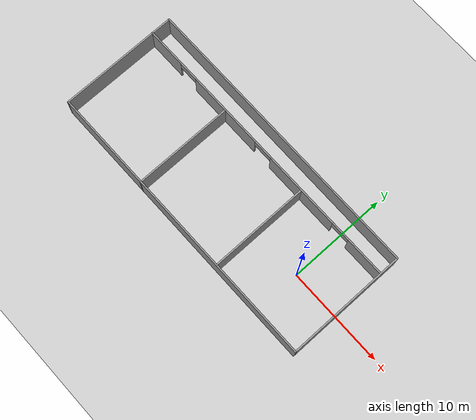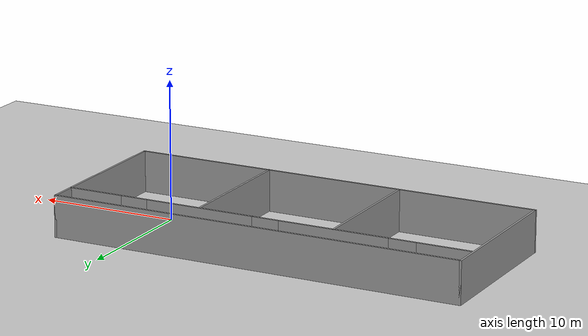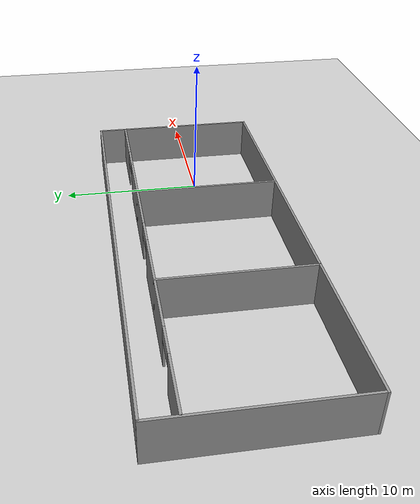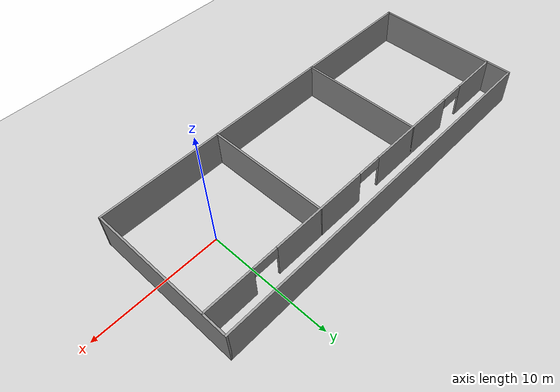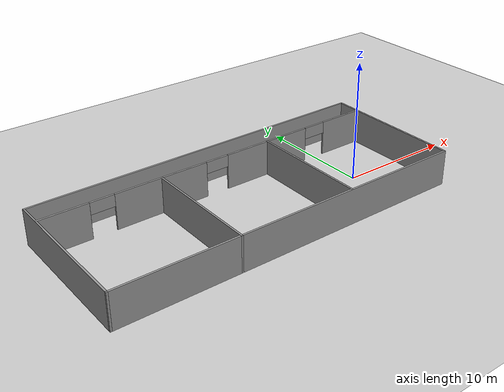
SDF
<sdf version="1.6">
 <world name="default">
  <light name="sun" type="directional">
   <pose>0 0 10 0 -0 0</pose>
   <diffuse>0.8 0.8 0.8 1</diffuse>
   <specular>0.2 0.2 0.2 1</specular>
   <attenuation>
    <range>1000</range>
    <constant>0.9</constant>
    <linear>0.01</linear>
    <quadratic>0.001</quadratic>
   </attenuation>
   <direction>-0.5 0.1 -0.9</direction>
  </light>
  <model name="ground_plane">
   <static>1</static>
   <link name="link">
    <collision name="collision">
     <geometry><plane><normal>0 0 1</normal><size>100 100</size></plane></geometry>
     <surface><friction><ode><mu>100</mu><mu2>50</mu2></ode></friction></surface>
    </collision>
    <visual name="visual">
     <cast_shadows>0</cast_shadows>
     <geometry><plane><normal>0 0 1</normal><size>100 100</size></plane></geometry>
     <material>
      <script><uri>file://media/materials/scripts/gazebo.material</uri><name>Gazebo/Grey</name></script>
     </material>
    </visual>
   </link>
  </model>
  <gravity>0 0 -9.8</gravity>
  <magnetic_field>6e-06 2.3e-05 -4.2e-05</magnetic_field>
  <atmosphere type="adiabatic"/>
  <physics name="default_physics" default="0" type="ode">
   <max_step_size>0.001</max_step_size>
   <real_time_factor>1</real_time_factor>
   <real_time_update_rate>1000</real_time_update_rate>
  </physics>
  <scene><ambient>0.4 0.4 0.4 1</ambient><background>0.7 0.7 0.7 1</background><shadows>1</shadows></scene>
  <spherical_coordinates>
   <surface_model>EARTH_WGS84</surface_model>
   <latitude_deg>0</latitude_deg>
   <longitude_deg>0</longitude_deg>
   <elevation>0</elevation>
   <heading_deg>0</heading_deg>
  </spherical_coordinates>
  <model name="SimilarRooms">
   <pose>-10 1 0 0 -0 0</pose>
   <link name="Wall_1">
    <collision name="Wall_1_Collision">
     <geometry><box><size>30.15 0.15 3</size></box></geometry>
     <pose>0 0 1.5 0 -0 0</pose>
    </collision>
    <visual name="Wall_1_Visual">
     <pose>0 0 1.5 0 -0 0</pose>
     <geometry><box><size>30.15 0.15 3</size></box></geometry>
     <material>
      <script><uri>file://media/materials/scripts/gazebo.material</uri><name>Gazebo/Grey</name></script>
      <ambient>1 1 1 1</ambient>
     </material>
     <meta><layer>0</layer></meta>
    </visual>
    <pose>0 -6 0 0 -0 3.14159</pose>
   </link>
   <link name="Wall_10">
    <collision name="Wall_10_Collision">
     <geometry><box><size>10.15 0.15 3</size></box></geometry>
     <pose>0 0 1.5 0 -0 0</pose>
    </collision>
    <visual name="Wall_10_Visual">
     <pose>0 0 1.5 0 -0 0</pose>
     <geometry><box><size>10.15 0.15 3</size></box></geometry>
     <material>
      <script><uri>file://media/materials/scripts/gazebo.material</uri><name>Gazebo/Grey</name></script>
      <ambient>1 1 1 1</ambient>
     </material>
     <meta><layer>0</layer></meta>
    </visual>
    <pose>5 -1 0 0 0 -1.5708</pose>
   </link>
   <link name="Wall_2">
    <collision name="Wall_2_Collision">
     <geometry><box><size>12.15 0.15 3</size></box></geometry>
     <pose>0 0 1.5 0 -0 0</pose>
    </collision>
    <visual name="Wall_2_Visual">
     <pose>0 0 1.5 0 -0 0</pose>
     <geometry><box><size>12.15 0.15 3</size></box></geometry>
     <material>
      <script><uri>file://media/materials/scripts/gazebo.material</uri><name>Gazebo/Grey</name></script>
      <ambient>1 1 1 1</ambient>
     </material>
     <meta><layer>0</layer></meta>
    </visual>
    <pose>-15 0 0 0 -0 1.5708</pose>
   </link>
   <link name="Wall_3">
    <collision name="Wall_3_Collision">
     <geometry><box><size>30.15 0.15 3</size></box></geometry>
     <pose>0 0 1.5 0 -0 0</pose>
    </collision>
    <visual name="Wall_3_Visual">
     <pose>0 0 1.5 0 -0 0</pose>
     <geometry><box><size>30.15 0.15 3</size></box></geometry>
     <material>
      <script><uri>file://media/materials/scripts/gazebo.material</uri><name>Gazebo/Grey</name></script>
      <ambient>1 1 1 1</ambient>
     </material>
     <meta><layer>0</layer></meta>
    </visual>
    <pose>0 6 0 0 -0 0</pose>
   </link>
   <link name="Wall_4">
    <collision name="Wall_4_Collision">
     <geometry><box><size>12.15 0.15 3</size></box></geometry>
     <pose>0 0 1.5 0 -0 0</pose>
    </collision>
    <visual name="Wall_4_Visual">
     <pose>0 0 1.5 0 -0 0</pose>
     <geometry><box><size>12.15 0.15 3</size></box></geometry>
     <material>
      <script><uri>file://media/materials/scripts/gazebo.material</uri><name>Gazebo/Grey</name></script>
      <ambient>1 1 1 1</ambient>
     </material>
     <meta><layer>0</layer></meta>
    </visual>
    <pose>15 0 0 0 0 -1.5708</pose>
   </link>
   <link name="Wall_6">
    <pose>0 4 0 0 -0 0</pose>
    <visual name="Wall_6_Visual_0">
     <pose>-13.0375 0 1.5 0 -0 0</pose>
     <geometry><box><size>4.075 0.15 3</size></box></geometry>
     <material>
      <script><uri>file://media/materials/scripts/gazebo.material</uri><name>Gazebo/Grey</name></script>
      <ambient>1 1 1 1</ambient>
     </material>
     <meta><layer>0</layer></meta>
    </visual>
    <collision name="Wall_6_Collision_0">
     <geometry><box><size>4.075 0.15 3</size></box></geometry>
     <pose>-13.0375 0 1.5 0 -0 0</pose>
    </collision>
    <visual name="Wall_6_Visual_1">
     <pose>-5 0 1.5 0 -0 0</pose>
     <geometry><box><size>8 0.15 3</size></box></geometry>
     <material>
      <script><uri>file://media/materials/scripts/gazebo.material</uri><name>Gazebo/Grey</name></script>
      <ambient>1 1 1 1</ambient>
     </material>
     <meta><layer>0</layer></meta>
    </visual>
    <collision name="Wall_6_Collision_1">
     <geometry><box><size>8 0.15 3</size></box></geometry>
     <pose>-5 0 1.5 0 -0 0</pose>
    </collision>
    <visual name="Wall_6_Visual_2">
     <pose>5 0 1.5 0 -0 0</pose>
     <geometry><box><size>8 0.15 3</size></box></geometry>
     <material>
      <script><uri>file://media/materials/scripts/gazebo.material</uri><name>Gazebo/Grey</name></script>
      <ambient>1 1 1 1</ambient>
     </material>
     <meta><layer>0</layer></meta>
    </visual>
    <collision name="Wall_6_Collision_2">
     <geometry><box><size>8 0.15 3</size></box></geometry>
     <pose>5 0 1.5 0 -0 0</pose>
    </collision>
    <visual name="Wall_6_Visual_3">
     <pose>13.0375 0 1.5 0 -0 0</pose>
     <geometry><box><size>4.075 0.15 3</size></box></geometry>
     <material>
      <script><uri>file://media/materials/scripts/gazebo.material</uri><name>Gazebo/Grey</name></script>
      <ambient>1 1 1 1</ambient>
     </material>
     <meta><layer>0</layer></meta>
    </visual>
    <collision name="Wall_6_Collision_3">
     <geometry><box><size>4.075 0.15 3</size></box></geometry>
     <pose>13.0375 0 1.5 0 -0 0</pose>
    </collision>
    <visual name="Wall_6_Visual_4">
     <pose>-10 0 2.5 0 -0 0</pose>
     <geometry><box><size>2 0.15 1</size></box></geometry>
     <material>
      <script><uri>file://media/materials/scripts/gazebo.material</uri><name>Gazebo/Grey</name></script>
      <ambient>1 1 1 1</ambient>
     </material>
     <meta><layer>0</layer></meta>
    </visual>
    <collision name="Wall_6_Collision_4">
     <geometry><box><size>2 0.15 1</size></box></geometry>
     <pose>-10 0 2.5 0 -0 0</pose>
    </collision>
    <visual name="Wall_6_Visual_5">
     <pose>0 0 2.5 0 -0 0</pose>
     <geometry><box><size>2 0.15 1</size></box></geometry>
     <material>
      <script><uri>file://media/materials/scripts/gazebo.material</uri><name>Gazebo/Grey</name></script>
      <ambient>1 1 1 1</ambient>
     </material>
     <meta><layer>0</layer></meta>
    </visual>
    <collision name="Wall_6_Collision_5">
     <geometry><box><size>2 0.15 1</size></box></geometry>
     <pose>0 0 2.5 0 -0 0</pose>
    </collision>
    <visual name="Wall_6_Visual_6">
     <pose>10 0 2.5 0 -0 0</pose>
     <geometry><box><size>2 0.15 1</size></box></geometry>
     <material>
      <script><uri>file://media/materials/scripts/gazebo.material</uri><name>Gazebo/Grey</name></script>
      <ambient>1 1 1 1</ambient>
     </material>
     <meta><layer>0</layer></meta>
    </visual>
    <collision name="Wall_6_Collision_6">
     <geometry><box><size>2 0.15 1</size></box></geometry>
     <pose>10 0 2.5 0 -0 0</pose>
    </collision>
   </link>
   <link name="Wall_8">
    <collision name="Wall_8_Collision">
     <geometry><box><size>10.15 0.15 3</size></box></geometry>
     <pose>0 0 1.5 0 -0 0</pose>
    </collision>
    <visual name="Wall_8_Visual">
     <pose>0 0 1.5 0 -0 0</pose>
     <geometry><box><size>10.15 0.15 3</size></box></geometry>
     <material>
      <script><uri>file://media/materials/scripts/gazebo.material</uri><name>Gazebo/Grey</name></script>
      <ambient>1 1 1 1</ambient>
     </material>
     <meta><layer>0</layer></meta>
    </visual>
    <pose>-5 -1 0 0 0 -1.5708</pose>
   </link>
   <static>1</static>
  </model>
 </world>
</sdf>
